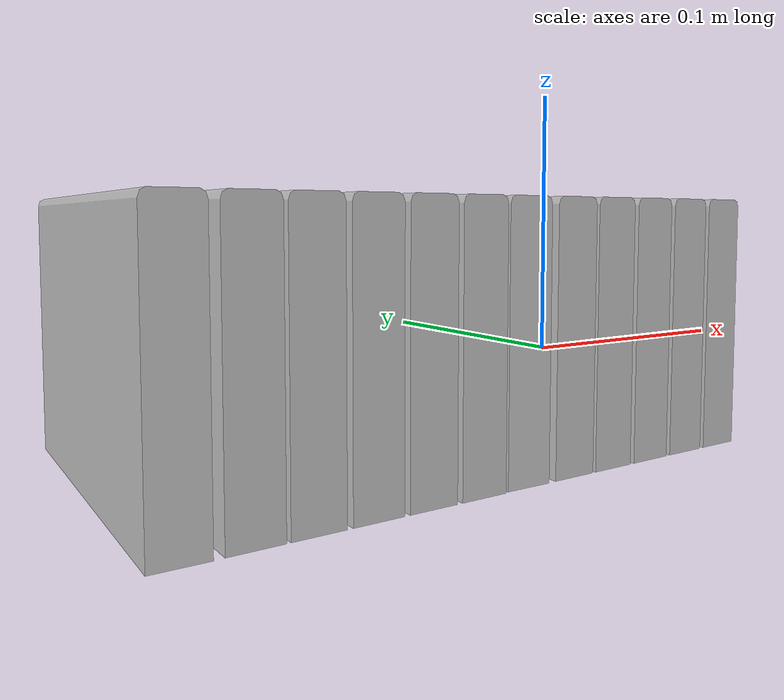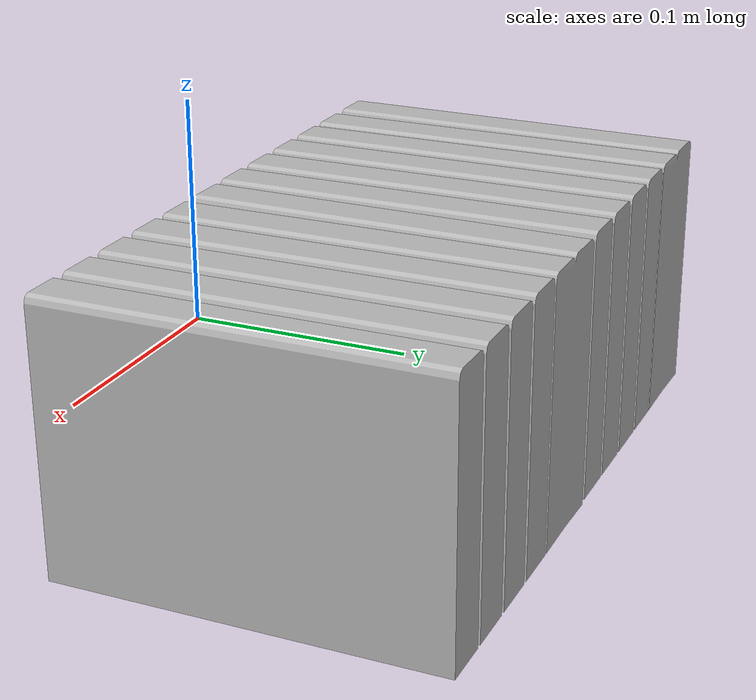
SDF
<?xml version="1.0" ?>
<sdf version="1.4">
  <model name="shelf1_book1_v6">
    <link name="body">
      <pose>0 0 0 0 0 0</pose>
      <inertial>
        <pose>  -0.011333   0.092942   0.000427 0 0 0</pose>
        <mass>0.5</mass>
        <inertia>
          <ixx>0.01</ixx>
          <ixy>0</ixy>
          <ixz>0</ixz>
          <iyy>0.01</iyy>
          <iyz>0</iyz>
          <izz>0.01</izz>
        </inertia>
      </inertial>
      <collision name="collision">
        <geometry>
          <mesh>
            <uri>model://bookshelf/shelf1_items/book1_v6/book1_v6.dae</uri>
          </mesh>
        </geometry>
      </collision>
      <visual name="visual">
        <geometry>
          <mesh>
            <uri>model://bookshelf/shelf1_items/book1_v6/book1_v6.dae</uri>
          </mesh>
        </geometry>
      </visual>
    </link>
  </model>
</sdf>
